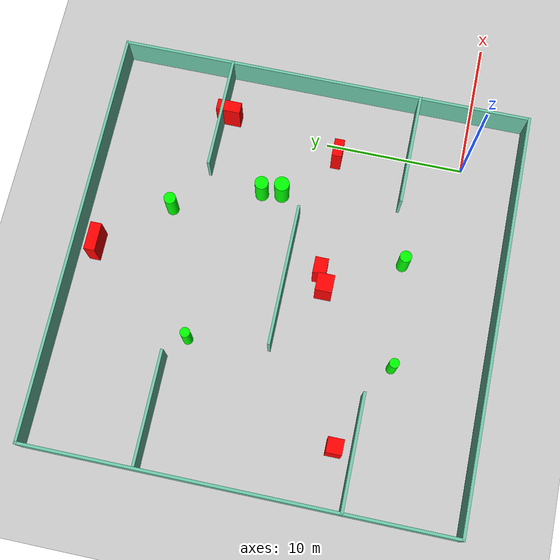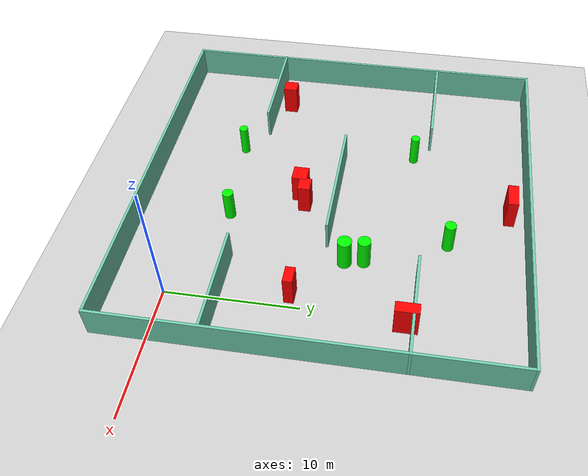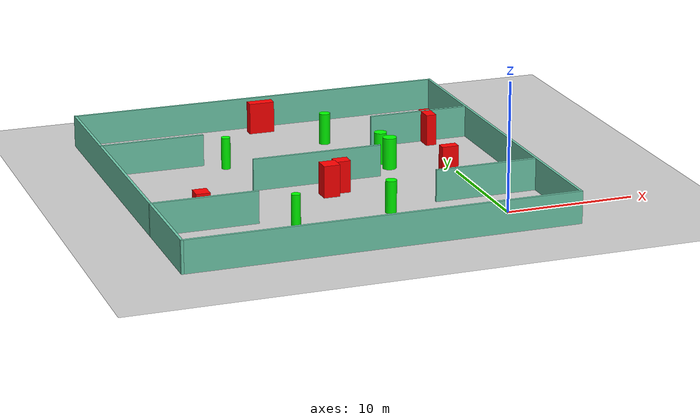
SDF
<sdf version="1.7">
 <world name="default">
  <light name="sun" type="directional">
   <pose>0 0 10 0 -0 0</pose>
   <diffuse>0.8 0.8 0.8 1</diffuse>
   <specular>0.2 0.2 0.2 1</specular>
   <attenuation>
    <range>1000</range>
    <constant>0.9</constant>
    <linear>0.01</linear>
    <quadratic>0.001</quadratic>
   </attenuation>
   <direction>-0.5 0.1 -0.9</direction>
   <spot><inner_angle>0</inner_angle><outer_angle>0</outer_angle><falloff>0</falloff></spot>
  </light>
  <model name="ground_plane">
   <static>1</static>
   <link name="link">
    <collision name="collision">
     <geometry><plane><normal>0 0 1</normal><size>100 100</size></plane></geometry>
     <surface>
      <contact><collide_bitmask>65535</collide_bitmask></contact>
      <friction><ode><mu>100</mu><mu2>50</mu2></ode></friction>
     </surface>
    </collision>
    <visual name="visual">
     <cast_shadows>0</cast_shadows>
     <geometry><plane><normal>0 0 1</normal><size>100 100</size></plane></geometry>
     <material>
      <script><uri>file://media/materials/scripts/gazebo.material</uri><name>Gazebo/Grey</name></script>
     </material>
    </visual>
   </link>
  </model>
  <gravity>0 0 -9.8</gravity>
  <magnetic_field>6e-06 2.3e-05 -4.2e-05</magnetic_field>
  <atmosphere type="adiabatic"/>
  <physics type="ode">
   <max_step_size>0.001</max_step_size>
   <real_time_factor>1</real_time_factor>
   <real_time_update_rate>1000</real_time_update_rate>
  </physics>
  <scene><ambient>0.4 0.4 0.4 1</ambient><background>0.7 0.7 0.7 1</background><shadows>1</shadows></scene>
  <spherical_coordinates>
   <surface_model>EARTH_WGS84</surface_model>
   <latitude_deg>0</latitude_deg>
   <longitude_deg>0</longitude_deg>
   <elevation>0</elevation>
   <heading_deg>0</heading_deg>
  </spherical_coordinates>
  <model name="my_base_walls">
   <link name="Wall_10">
    <collision name="Wall_10_Collision">
     <geometry><box><size>8.2 0.2 2.5</size></box></geometry>
     <pose>0 0 1.25 0 -0 0</pose>
    </collision>
    <visual name="Wall_10_Visual">
     <pose>0 0 1.25 0 -0 0</pose>
     <geometry><box><size>8.2 0.2 2.5</size></box></geometry>
     <material>
      <script><uri>file://media/materials/scripts/gazebo.material</uri><name>Gazebo/Grey</name></script>
      <ambient>0.435294 0.796078 0.67451 1</ambient>
     </material>
     <meta><layer>0</layer></meta>
    </visual>
    <pose>-11 -7 0 0 -0 0</pose>
   </link>
   <link name="Wall_12">
    <collision name="Wall_12_Collision">
     <geometry><box><size>8.2 0.2 2.5</size></box></geometry>
     <pose>0 0 1.25 0 -0 0</pose>
    </collision>
    <visual name="Wall_12_Visual">
     <pose>0 0 1.25 0 -0 0</pose>
     <geometry><box><size>8.2 0.2 2.5</size></box></geometry>
     <material>
      <script><uri>file://media/materials/scripts/gazebo.material</uri><name>Gazebo/Grey</name></script>
      <ambient>0.435294 0.796078 0.67451 1</ambient>
     </material>
     <meta><layer>0</layer></meta>
    </visual>
    <pose>-11 7 0 0 -0 0</pose>
   </link>
   <link name="Wall_14">
    <collision name="Wall_14_Collision">
     <geometry><box><size>8.2 0.2 2.5</size></box></geometry>
     <pose>0 0 1.25 0 -0 0</pose>
    </collision>
    <visual name="Wall_14_Visual">
     <pose>0 0 1.25 0 -0 0</pose>
     <geometry><box><size>8.2 0.2 2.5</size></box></geometry>
     <material>
      <script><uri>file://media/materials/scripts/gazebo.material</uri><name>Gazebo/Grey</name></script>
      <ambient>0.435294 0.796078 0.67451 1</ambient>
     </material>
     <meta><layer>0</layer></meta>
    </visual>
    <pose>11 7 0 0 -0 3.14159</pose>
   </link>
   <link name="Wall_16">
    <collision name="Wall_16_Collision">
     <geometry><box><size>10.2 0.2 2.5</size></box></geometry>
     <pose>0 0 1.25 0 -0 0</pose>
    </collision>
    <visual name="Wall_16_Visual">
     <pose>0 0 1.25 0 -0 0</pose>
     <geometry><box><size>10.2 0.2 2.5</size></box></geometry>
     <material>
      <script><uri>file://media/materials/scripts/gazebo.material</uri><name>Gazebo/Grey</name></script>
      <ambient>0.435294 0.796078 0.67451 1</ambient>
     </material>
     <meta><layer>0</layer></meta>
    </visual>
    <pose>0 0 0 0 -0 3.14159</pose>
   </link>
   <link name="Wall_2">
    <collision name="Wall_2_Collision">
     <geometry><box><size>30.2 0.2 2.5</size></box></geometry>
     <pose>0 0 1.25 0 -0 0</pose>
    </collision>
    <visual name="Wall_2_Visual">
     <pose>0 0 1.25 0 -0 0</pose>
     <geometry><box><size>30.2 0.2 2.5</size></box></geometry>
     <material>
      <script><uri>file://media/materials/scripts/gazebo.material</uri><name>Gazebo/Grey</name></script>
      <ambient>0.435294 0.796078 0.67451 1</ambient>
     </material>
     <meta><layer>0</layer></meta>
    </visual>
    <pose>0 -15 0 0 -0 3.14159</pose>
   </link>
   <link name="Wall_3">
    <collision name="Wall_3_Collision">
     <geometry><box><size>30.2 0.2 2.5</size></box></geometry>
     <pose>0 0 1.25 0 -0 0</pose>
    </collision>
    <visual name="Wall_3_Visual">
     <pose>0 0 1.25 0 -0 0</pose>
     <geometry><box><size>30.2 0.2 2.5</size></box></geometry>
     <material>
      <script><uri>file://media/materials/scripts/gazebo.material</uri><name>Gazebo/Grey</name></script>
      <ambient>0.435294 0.796078 0.67451 1</ambient>
     </material>
     <meta><layer>0</layer></meta>
    </visual>
    <pose>-15 0 0 0 -0 1.5708</pose>
   </link>
   <link name="Wall_4">
    <collision name="Wall_4_Collision">
     <geometry><box><size>30.2 0.2 2.5</size></box></geometry>
     <pose>0 0 1.25 0 -0 0</pose>
    </collision>
    <visual name="Wall_4_Visual">
     <pose>0 0 1.25 0 -0 0</pose>
     <geometry><box><size>30.2 0.2 2.5</size></box></geometry>
     <material>
      <script><uri>file://media/materials/scripts/gazebo.material</uri><name>Gazebo/Grey</name></script>
      <ambient>0.435294 0.796078 0.67451 1</ambient>
     </material>
     <meta><layer>0</layer></meta>
    </visual>
    <pose>0 15 0 0 -0 0</pose>
   </link>
   <link name="Wall_6">
    <collision name="Wall_6_Collision">
     <geometry><box><size>30.2 0.2 2.5</size></box></geometry>
     <pose>0 0 1.25 0 -0 0</pose>
    </collision>
    <visual name="Wall_6_Visual">
     <pose>0 0 1.25 0 -0 0</pose>
     <geometry><box><size>30.2 0.2 2.5</size></box></geometry>
     <material>
      <script><uri>file://media/materials/scripts/gazebo.material</uri><name>Gazebo/Grey</name></script>
      <ambient>0.435294 0.796078 0.67451 1</ambient>
     </material>
     <meta><layer>0</layer></meta>
    </visual>
    <pose>15 0 0 0 -0 1.5708</pose>
   </link>
   <link name="Wall_8">
    <collision name="Wall_8_Collision">
     <geometry><box><size>8.2 0.2 2.5</size></box></geometry>
     <pose>0 0 1.25 0 -0 0</pose>
    </collision>
    <visual name="Wall_8_Visual">
     <pose>0 0 1.25 0 -0 0</pose>
     <geometry><box><size>8.2 0.2 2.5</size></box></geometry>
     <material>
      <script><uri>file://media/materials/scripts/gazebo.material</uri><name>Gazebo/Grey</name></script>
      <ambient>0.435294 0.796078 0.67451 1</ambient>
     </material>
     <meta><layer>0</layer></meta>
    </visual>
    <pose>11 -7 0 0 -0 3.14159</pose>
   </link>
   <static>1</static>
   <pose>-11 11 0 0 -0 0</pose>
  </model>
  <model name="cylinder1">
   <static>1</static>
   <link name="link">
    <inertial>
     <mass>1</mass>
     <inertia><ixx>0.5</ixx><ixy>0</ixy><ixz>0</ixz><iyy>0.5</iyy><iyz>0</iyz><izz>1</izz></inertia>
    </inertial>
    <collision name="collision">
     <geometry><cylinder><radius>0.49232549183837315</radius><length>2.5</length></cylinder></geometry>
    </collision>
    <visual name="visual">
     <geometry><cylinder><radius>0.49232549183837315</radius><length>2.5</length></cylinder></geometry>
     <material>
      <ambient>0 1 0 1</ambient>
      <diffuse>0 1 0 1</diffuse>
      <specular>0.1 0.1 0.1 1</specular>
      <emissive>0 0 0 0</emissive>
     </material>
    </visual>
   </link>
   <pose>-4.792155498460016 13.947195502401375 1.25 0 0 0</pose>
  </model>
  <model name="cylinder2">
   <static>1</static>
   <link name="link">
    <inertial>
     <mass>1</mass>
     <inertia><ixx>0.5</ixx><ixy>0</ixy><ixz>0</ixz><iyy>0.5</iyy><iyz>0</iyz><izz>1</izz></inertia>
    </inertial>
    <collision name="collision">
     <geometry><cylinder><radius>0.43442951789070045</radius><length>2.5</length></cylinder></geometry>
    </collision>
    <visual name="visual">
     <geometry><cylinder><radius>0.43442951789070045</radius><length>2.5</length></cylinder></geometry>
     <material>
      <ambient>0 1 0 1</ambient>
      <diffuse>0 1 0 1</diffuse>
      <specular>0.1 0.1 0.1 1</specular>
      <emissive>0 0 0 0</emissive>
     </material>
    </visual>
   </link>
   <pose>-7.249494795104372 20.055314232211927 1.25 0 0 0</pose>
  </model>
  <model name="cylinder3">
   <static>1</static>
   <link name="link">
    <inertial>
     <mass>1</mass>
     <inertia><ixx>0.5</ixx><ixy>0</ixy><ixz>0</ixz><iyy>0.5</iyy><iyz>0</iyz><izz>1</izz></inertia>
    </inertial>
    <collision name="collision">
     <geometry><cylinder><radius>0.35793532453135923</radius><length>2.5</length></cylinder></geometry>
    </collision>
    <visual name="visual">
     <geometry><cylinder><radius>0.35793532453135923</radius><length>2.5</length></cylinder></geometry>
     <material>
      <ambient>0 1 0 1</ambient>
      <diffuse>0 1 0 1</diffuse>
      <specular>0.1 0.1 0.1 1</specular>
      <emissive>0 0 0 0</emissive>
     </material>
    </visual>
   </link>
   <pose>-16.460128241705014 16.749910961279554 1.25 0 0 0</pose>
  </model>
  <model name="cylinder4">
   <static>1</static>
   <link name="link">
    <inertial>
     <mass>1</mass>
     <inertia><ixx>0.5</ixx><ixy>0</ixy><ixz>0</ixz><iyy>0.5</iyy><iyz>0</iyz><izz>1</izz></inertia>
    </inertial>
    <collision name="collision">
     <geometry><cylinder><radius>0.5432856306680143</radius><length>2.5</length></cylinder></geometry>
    </collision>
    <visual name="visual">
     <geometry><cylinder><radius>0.5432856306680143</radius><length>2.5</length></cylinder></geometry>
     <material>
      <ambient>0 1 0 1</ambient>
      <diffuse>0 1 0 1</diffuse>
      <specular>0.1 0.1 0.1 1</specular>
      <emissive>0 0 0 0</emissive>
     </material>
    </visual>
   </link>
   <pose>-4.572642575557232 12.515341212298527 1.25 0 0 0</pose>
  </model>
  <model name="cylinder5">
   <static>1</static>
   <link name="link">
    <inertial>
     <mass>1</mass>
     <inertia><ixx>0.5</ixx><ixy>0</ixy><ixz>0</ixz><iyy>0.5</iyy><iyz>0</iyz><izz>1</izz></inertia>
    </inertial>
    <collision name="collision">
     <geometry><cylinder><radius>0.42505810768433244</radius><length>2.5</length></cylinder></geometry>
    </collision>
    <visual name="visual">
     <geometry><cylinder><radius>0.42505810768433244</radius><length>2.5</length></cylinder></geometry>
     <material>
      <ambient>0 1 0 1</ambient>
      <diffuse>0 1 0 1</diffuse>
      <specular>0.1 0.1 0.1 1</specular>
      <emissive>0 0 0 0</emissive>
     </material>
    </visual>
   </link>
   <pose>-8.056453327957136 2.947571390307589 1.25 0 0 0</pose>
  </model>
  <model name="cylinder6">
   <static>1</static>
   <link name="link">
    <inertial>
     <mass>1</mass>
     <inertia><ixx>0.5</ixx><ixy>0</ixy><ixz>0</ixz><iyy>0.5</iyy><iyz>0</iyz><izz>1</izz></inertia>
    </inertial>
    <collision name="collision">
     <geometry><cylinder><radius>0.34904538205607194</radius><length>2.5</length></cylinder></geometry>
    </collision>
    <visual name="visual">
     <geometry><cylinder><radius>0.34904538205607194</radius><length>2.5</length></cylinder></geometry>
     <material>
      <ambient>0 1 0 1</ambient>
      <diffuse>0 1 0 1</diffuse>
      <specular>0.1 0.1 0.1 1</specular>
      <emissive>0 0 0 0</emissive>
     </material>
    </visual>
   </link>
   <pose>-15.5931430965007 2.406211137015088 1.25 0 0 0</pose>
  </model>
  <model name="box1">
   <static>1</static>
   <link name="link">
    <inertial>
     <mass>1</mass>
     <inertia><ixx>0.083</ixx><ixy>0</ixy><ixz>0</ixz><iyy>0.083</iyy><iyz>0</iyz><izz>0.083</izz></inertia>
    </inertial>
    <collision name="collision">
     <geometry><box><size>2.02815344737618 0.7943446295460244 2.5</size></box></geometry>
    </collision>
    <visual name="visual">
     <geometry><box><size>2.02815344737618 0.7943446295460244 2.5</size></box></geometry>
     <material>
      <ambient>1 0 0 1</ambient>
      <diffuse>1 0 0 1</diffuse>
      <specular>0.1 0.1 0.1 1</specular>
      <emissive>0 0 0 0</emissive>
     </material>
    </visual>
    <sensor name="my_contact" type="contact">
     <contact><collision>box_collision</collision><topic>__default_topic__</topic></contact>
    </sensor>
   </link>
   <pose>-11.107671107704 24.673091313262425 1.25 0 0 0</pose>
  </model>
  <model name="box2">
   <static>1</static>
   <link name="link">
    <inertial>
     <mass>1</mass>
     <inertia><ixx>0.083</ixx><ixy>0</ixy><ixz>0</ixz><iyy>0.083</iyy><iyz>0</iyz><izz>0.083</izz></inertia>
    </inertial>
    <collision name="collision">
     <geometry><box><size>0.8189778934342755 1.7497788345151815 2.5</size></box></geometry>
    </collision>
    <visual name="visual">
     <geometry><box><size>0.8189778934342755 1.7497788345151815 2.5</size></box></geometry>
     <material>
      <ambient>1 0 0 1</ambient>
      <diffuse>1 0 0 1</diffuse>
      <specular>0.1 0.1 0.1 1</specular>
      <emissive>0 0 0 0</emissive>
     </material>
    </visual>
    <sensor name="my_contact" type="contact">
     <contact><collision>box_collision</collision><topic>__default_topic__</topic></contact>
    </sensor>
   </link>
   <pose>0.5235028652479876 17.526936870142578 1.25 0 0 0</pose>
  </model>
  <model name="box3">
   <static>1</static>
   <link name="link">
    <inertial>
     <mass>1</mass>
     <inertia><ixx>0.083</ixx><ixy>0</ixy><ixz>0</ixz><iyy>0.083</iyy><iyz>0</iyz><izz>0.083</izz></inertia>
    </inertial>
    <collision name="collision">
     <geometry><box><size>1.0769853144003607 1.1184763516356337 2.5</size></box></geometry>
    </collision>
    <visual name="visual">
     <geometry><box><size>1.0769853144003607 1.1184763516356337 2.5</size></box></geometry>
     <material>
      <ambient>1 0 0 1</ambient>
      <diffuse>1 0 0 1</diffuse>
      <specular>0.1 0.1 0.1 1</specular>
      <emissive>0 0 0 0</emissive>
     </material>
    </visual>
    <sensor name="my_contact" type="contact">
     <contact><collision>box_collision</collision><topic>__default_topic__</topic></contact>
    </sensor>
   </link>
   <pose>-21.83786086223798 5.262062361335726 1.25 0 0 0</pose>
  </model>
  <model name="box4">
   <static>1</static>
   <link name="link">
    <inertial>
     <mass>1</mass>
     <inertia><ixx>0.083</ixx><ixy>0</ixy><ixz>0</ixz><iyy>0.083</iyy><iyz>0</iyz><izz>0.083</izz></inertia>
    </inertial>
    <collision name="collision">
     <geometry><box><size>1.1689269802549567 0.9475532600909964 2.5</size></box></geometry>
    </collision>
    <visual name="visual">
     <geometry><box><size>1.1689269802549567 0.9475532600909964 2.5</size></box></geometry>
     <material>
      <ambient>1 0 0 1</ambient>
      <diffuse>1 0 0 1</diffuse>
      <specular>0.1 0.1 0.1 1</specular>
      <emissive>0 0 0 0</emissive>
     </material>
    </visual>
    <sensor name="my_contact" type="contact">
     <contact><collision>box_collision</collision><topic>__default_topic__</topic></contact>
    </sensor>
   </link>
   <pose>-9.910945689406418 8.625513685180373 1.25 0 0 0</pose>
  </model>
  <model name="box5">
   <static>1</static>
   <link name="link">
    <inertial>
     <mass>1</mass>
     <inertia><ixx>0.083</ixx><ixy>0</ixy><ixz>0</ixz><iyy>0.083</iyy><iyz>0</iyz><izz>0.083</izz></inertia>
    </inertial>
    <collision name="collision">
     <geometry><box><size>1.2740598114185064 1.2070198530416938 2.5</size></box></geometry>
    </collision>
    <visual name="visual">
     <geometry><box><size>1.2740598114185064 1.2070198530416938 2.5</size></box></geometry>
     <material>
      <ambient>1 0 0 1</ambient>
      <diffuse>1 0 0 1</diffuse>
      <specular>0.1 0.1 0.1 1</specular>
      <emissive>0 0 0 0</emissive>
     </material>
    </visual>
    <sensor name="my_contact" type="contact">
     <contact><collision>box_collision</collision><topic>__default_topic__</topic></contact>
    </sensor>
   </link>
   <pose>-11.041766993188153 8.094450820167099 1.25 0 0 0</pose>
  </model>
  <model name="box6">
   <static>1</static>
   <link name="link">
    <inertial>
     <mass>1</mass>
     <inertia><ixx>0.083</ixx><ixy>0</ixy><ixz>0</ixz><iyy>0.083</iyy><iyz>0</iyz><izz>0.083</izz></inertia>
    </inertial>
    <collision name="collision">
     <geometry><box><size>1.3232135316611533 0.7256756040790382 2.5</size></box></geometry>
    </collision>
    <visual name="visual">
     <geometry><box><size>1.3232135316611533 0.7256756040790382 2.5</size></box></geometry>
     <material>
      <ambient>1 0 0 1</ambient>
      <diffuse>1 0 0 1</diffuse>
      <specular>0.1 0.1 0.1 1</specular>
      <emissive>0 0 0 0</emissive>
     </material>
    </visual>
    <sensor name="my_contact" type="contact">
     <contact><collision>box_collision</collision><topic>__default_topic__</topic></contact>
    </sensor>
   </link>
   <pose>-1.0328545254278438 9.114010123352347 1.25 0 0 0</pose>
  </model>
 </world>
</sdf>
